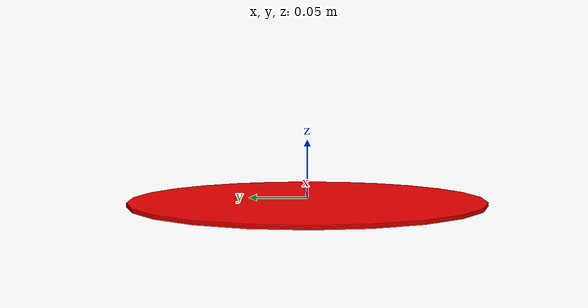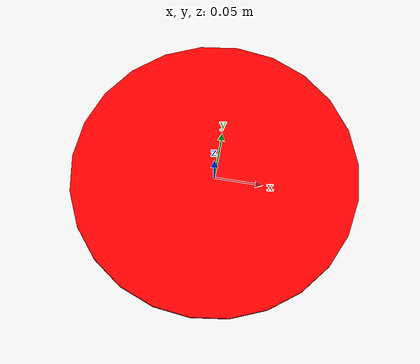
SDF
<?xml version="1.0"?>
<sdf version="1.6">
  <model name="circular_object">
    <static>true</static>
    <link name="link">
      <inertial>
        <pose>0 0 0 0 0 0</pose>
        <mass>0.001</mass>
        <inertia>
          <ixx>3.7499999999999997e-06</ixx>
          <ixy>0.0</ixy>
          <ixz>0.0</ixz>
          <iyy>1.8750008333333333e-06</iyy>
          <iyz>0.0</iyz>
          <izz>1.8750008333333333e-06</izz>
        </inertia>
      </inertial>
      <visual name="front_visual">
        <pose>0 0 0 0 0 0</pose>
        <geometry>
          <cylinder>
            <radius>0.15</radius>
            <length>0.001</length>
          </cylinder>
        </geometry>
        <material>
          <ambient>1 0 0 1</ambient>
        </material>
      </visual>
      <!-- Hide the marker from the back -->
      <visual name="rear_visual">
        <pose>0 0 -0.002 0 0 0</pose>
        <geometry>
          <cylinder>
            <radius>0.15</radius>
            <length>0.001</length>
          </cylinder>
        </geometry>
        <material>
          <ambient>1 0 0 1</ambient>
        </material>
      </visual>
      <collision name="collision">
        <pose>0 0 0 0 0 0</pose>
        <geometry>
          <cylinder>
            <radius>0.15</radius>
            <length>0.001</length>
          </cylinder>
        </geometry>
      </collision>
    </link>
  </model>
</sdf>
